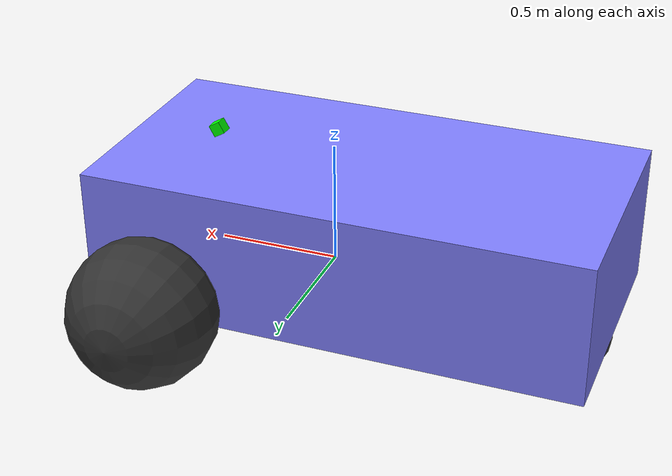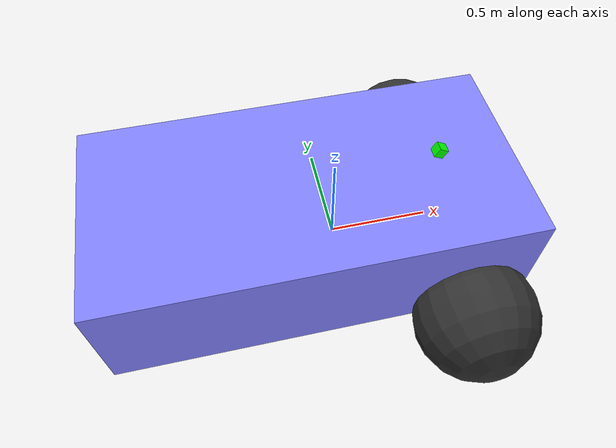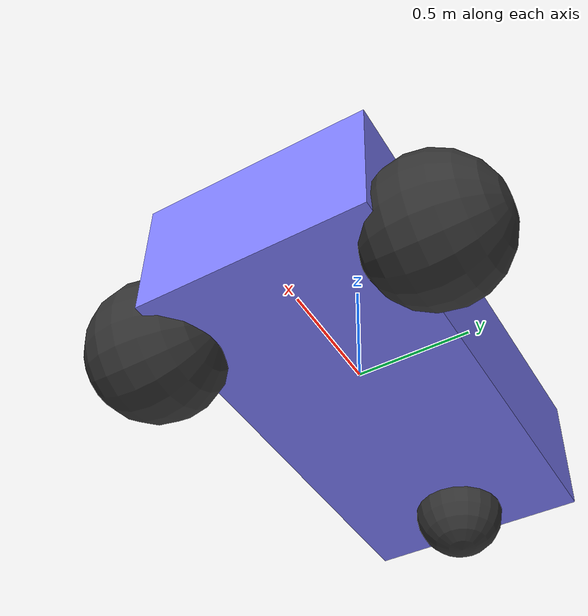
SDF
<?xml version="1.0" ?>
<sdf version="1.8">
    <model name='diff_drive'>
      <link name='chassis'>
        <pose>-0.151427 -0 0.175 0 -0 0</pose>
        <inertial>
          <mass>1.14395</mass>
          <inertia>
            <ixx>0.126164</ixx>
            <ixy>0</ixy>
            <ixz>0</ixz>
            <iyy>0.416519</iyy>
            <iyz>0</iyz>
            <izz>0.481014</izz>
          </inertia>
        </inertial>
        <visual name='visual_chassis'>
          <geometry>
            <box>
              <size>2.01142 1 0.568726</size>
            </box>
          </geometry>
          <material>
            <ambient>0.5 0.5 1.0 1</ambient>
            <diffuse>0.5 0.5 1.0 1</diffuse>
            <specular>0.0 0.0 1.0 1</specular>
          </material>
        </visual>
        <collision name='collision_chassis'>
          <geometry>
            <box>
              <size>2.01142 1 0.568726</size>
            </box>
          </geometry>
        </collision>
      </link>

      <link name='left_wheel'>
        <pose>0.554283 0.625029 -0.025 -1.5707 0 0</pose>
        <inertial>
          <mass>2</mass>
          <inertia>
            <ixx>0.145833</ixx>
            <ixy>0</ixy>
            <ixz>0</ixz>
            <iyy>0.145833</iyy>
            <iyz>0</iyz>
            <izz>0.125</izz>
          </inertia>
        </inertial>
        <visual name='visual_left_wheel'>
          <geometry>
            <sphere>
              <radius>0.3</radius>
            </sphere>
          </geometry>
          <material>
            <ambient>0.2 0.2 0.2 1</ambient>
            <diffuse>0.2 0.2 0.2 1</diffuse>
            <specular>0.2 0.2 0.2 1</specular>
          </material>
        </visual>
        <collision name='collision_left_wheel'>
          <geometry>
            <sphere>
              <radius>0.3</radius>
            </sphere>
          </geometry>
        </collision>
      </link>

      <link name='right_wheel'>
        <pose>0.554282 -0.625029 -0.025 -1.5707 0 0</pose>
        <inertial>
          <mass>2</mass>
          <inertia>
            <ixx>0.145833</ixx>
            <ixy>0</ixy>
            <ixz>0</ixz>
            <iyy>0.145833</iyy>
            <iyz>0</iyz>
            <izz>0.125</izz>
          </inertia>
        </inertial>
        <visual name='visual_right_wheel'>
          <geometry>
            <sphere>
              <radius>0.3</radius>
            </sphere>
          </geometry>
          <material>
            <ambient>0.2 0.2 0.2 1</ambient>
            <diffuse>0.2 0.2 0.2 1</diffuse>
            <specular>0.2 0.2 0.2 1</specular>
          </material>
        </visual>
        <collision name='collision_right_wheel'>
          <geometry>
            <sphere>
              <radius>0.3</radius>
            </sphere>
          </geometry>
        </collision>
      </link>

      <link name='caster'>
        <pose>-0.957138 -0 -0.125 0 -0 0</pose>
        <inertial>
          <mass>1</mass>
          <inertia>
            <ixx>0.1</ixx>
            <ixy>0</ixy>
            <ixz>0</ixz>
            <iyy>0.1</iyy>
            <iyz>0</iyz>
            <izz>0.1</izz>
          </inertia>
        </inertial>
        <visual name='visual_caster'>
          <geometry>
            <sphere>
              <radius>0.2</radius>
            </sphere>
          </geometry>
          <material>
            <ambient>0.2 0.2 0.2 1</ambient>
            <diffuse>0.2 0.2 0.2 1</diffuse>
            <specular>0.2 0.2 0.2 1</specular>
          </material>
        </visual>
        <collision name='collision_caster'>
          <geometry>
            <sphere>
              <radius>0.2</radius>
            </sphere>
          </geometry>
        </collision>
      </link>

      <link name="camera_link">
        <pose>0.5 0 0.5 0 0.52 0</pose>
        <inertial>
          <mass>0.1</mass>
          <inertia>
            <ixx>0.0001</ixx>
            <iyy>0.0001</iyy>
            <izz>0.0001</izz>
            <ixy>0</ixy>
            <ixz>0</ixz>
            <iyz>0</iyz>
          </inertia>
        </inertial>
        <visual name="camera_visual">
          <geometry>
            <box>
              <size>0.05 0.05 0.05</size>
            </box>
          </geometry>
          <material>
            <ambient>0 1 0 1</ambient>
            <diffuse>0 1 0 1</diffuse>
          </material>
        </visual>
        <collision name="camera_collision">
          <geometry>
            <box>
              <size>0.05 0.05 0.05</size>
            </box>
          </geometry>
        </collision>
        <sensor name="camera_sensor" type="camera">
          <always_on>true</always_on>
          <update_rate>30</update_rate>
          <pose>0 0 0 0 0 0</pose>
          <camera>
            <horizontal_fov>1.047</horizontal_fov>
            <image>
              <width>640</width>
              <height>480</height>
              <format>R8G8B8</format>
            </image>
            <clip>
              <near>0.1</near>
              <far>100</far>
            </clip>
          </camera>
          <visualize>true</visualize>
          <topic>camera/image_raw</topic>
          <gz_frame_id>diff_drive/camera_link</gz_frame_id>
        </sensor>
      </link>

      <joint name="camera_joint" type="fixed">
        <parent>chassis</parent>
        <child>camera_link</child>
      </joint>

      <joint name='left_wheel_joint' type='revolute'>
        <parent>chassis</parent>
        <child>left_wheel</child>
        <axis>
          <xyz>0 0 1</xyz>
          <limit>
            <lower>-1.79769e+308</lower>
            <upper>1.79769e+308</upper>
          </limit>
        </axis>
      </joint>

      <joint name='right_wheel_joint' type='revolute'>
        <parent>chassis</parent>
        <child>right_wheel</child>
        <axis>
          <xyz>0 0 1</xyz>
          <limit>
            <lower>-1.79769e+308</lower>
            <upper>1.79769e+308</upper>
          </limit>
        </axis>
      </joint>

      <joint name='caster_wheel' type='ball'>
        <parent>chassis</parent>
        <child>caster</child>
      </joint>

      <plugin
        filename="ignition-gazebo-diff-drive-system"
        name="ignition::gazebo::systems::DiffDrive">
        <left_joint>left_wheel_joint</left_joint>
        <right_joint>right_wheel_joint</right_joint>
        <wheel_separation>1.25</wheel_separation>
        <wheel_radius>0.3</wheel_radius>
        <odom_publish_frequency>1</odom_publish_frequency>
        <max_linear_acceleration>1</max_linear_acceleration>
        <min_linear_acceleration>-1</min_linear_acceleration>
        <max_angular_acceleration>2</max_angular_acceleration>
        <min_angular_acceleration>-2</min_angular_acceleration>
        <max_linear_velocity>0.5</max_linear_velocity>
        <min_linear_velocity>-0.5</min_linear_velocity>
        <max_angular_velocity>1</max_angular_velocity>
        <min_angular_velocity>-1</min_angular_velocity>
      </plugin>
    </model>
</sdf>
